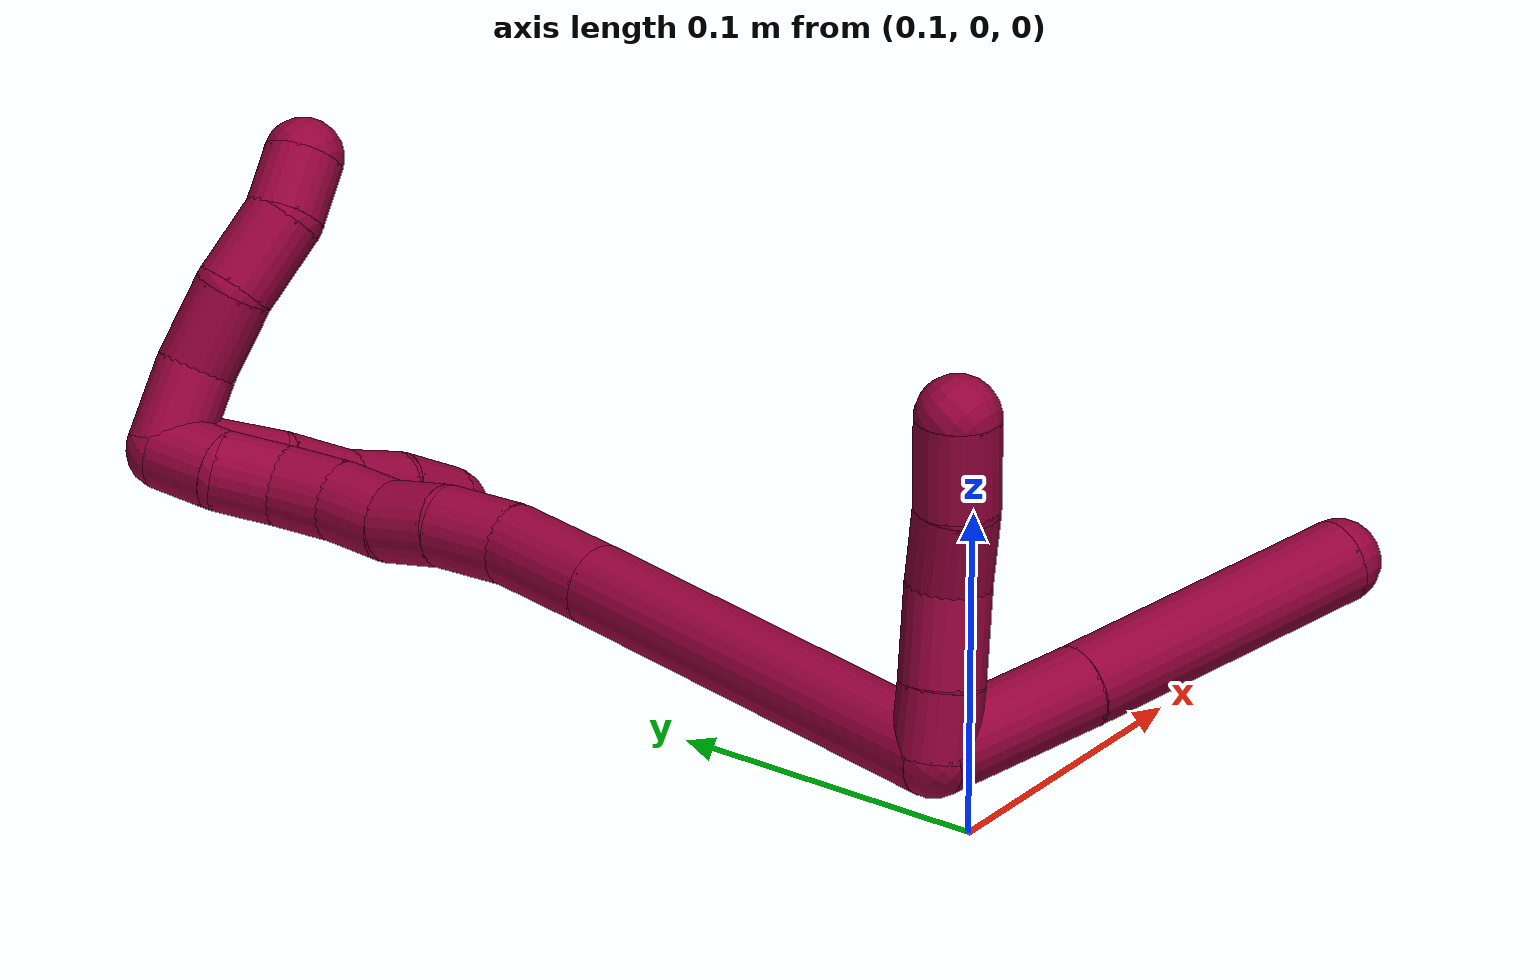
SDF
<sdf version="1.7">
 <world name="default">
  <model name="8">
   <static>0</static>
   <link name="8">
    <collision name="collision-cylinder-e_1_2_8">
     <pose>0.025119 -0.005033 -0.004466 2.29651 1.30906 2.08158</pose>
     <geometry><cylinder><radius>0.0125</radius><length>0.052009</length></cylinder></geometry>
     <surface>
      <friction><ode><mu>1.16</mu><mu2>1.16</mu2><slip1>0</slip1><slip2>0</slip2></ode></friction>
      <contact><ode><kp>1e+06</kp><kd>1</kd><max_vel>0</max_vel><min_depth>0.001</min_depth></ode></contact>
     </surface>
    </collision>
    <visual name="visual-cylinder-e_1_2_8">
     <pose>0.025119 -0.005033 -0.004466 2.29651 1.30906 2.08158</pose>
     <geometry><cylinder><radius>0.0125</radius><length>0.052009</length></cylinder></geometry>
     <material><ambient>0.584314 0 0.227451 1</ambient></material>
    </visual>
    <collision name="collision-cylinder-e_2_8_6">
     <pose>0.097904 -0.018856 -0.01609 2.25432 1.33732 2.05855</pose>
     <geometry><cylinder><radius>0.0125</radius><length>0.097991</length></cylinder></geometry>
     <surface>
      <friction><ode><mu>1.16</mu><mu2>1.16</mu2><slip1>0</slip1><slip2>0</slip2></ode></friction>
      <contact><ode><kp>1e+06</kp><kd>1</kd><max_vel>0</max_vel><min_depth>0.001</min_depth></ode></contact>
     </surface>
    </collision>
    <visual name="visual-cylinder-e_2_8_6">
     <pose>0.097904 -0.018856 -0.01609 2.25432 1.33732 2.05855</pose>
     <geometry><cylinder><radius>0.0125</radius><length>0.097991</length></cylinder></geometry>
     <material><ambient>0.584314 0 0.227451 1</ambient></material>
    </visual>
    <collision name="collision-cylinder-e_1_2_9">
     <pose>0.002736 -0.008006 0.005779 0.945524 0.270308 0.138872</pose>
     <geometry><cylinder><radius>0.0125</radius><length>0.020492</length></cylinder></geometry>
     <surface>
      <friction><ode><mu>1.16</mu><mu2>1.16</mu2><slip1>0</slip1><slip2>0</slip2></ode></friction>
      <contact><ode><kp>1e+06</kp><kd>1</kd><max_vel>0</max_vel><min_depth>0.001</min_depth></ode></contact>
     </surface>
    </collision>
    <visual name="visual-cylinder-e_1_2_9">
     <pose>0.002736 -0.008006 0.005779 0.945524 0.270308 0.138872</pose>
     <geometry><cylinder><radius>0.0125</radius><length>0.020492</length></cylinder></geometry>
     <material><ambient>0.584314 0 0.227451 1</ambient></material>
    </visual>
    <collision name="collision-cylinder-e_2_9_10">
     <pose>0.009462 -0.026467 0.020183 0.88112 0.286312 0.135707</pose>
     <geometry><cylinder><radius>0.0125</radius><length>0.028256</length></cylinder></geometry>
     <surface>
      <friction><ode><mu>1.16</mu><mu2>1.16</mu2><slip1>0</slip1><slip2>0</slip2></ode></friction>
      <contact><ode><kp>1e+06</kp><kd>1</kd><max_vel>0</max_vel><min_depth>0.001</min_depth></ode></contact>
     </surface>
    </collision>
    <visual name="visual-cylinder-e_2_9_10">
     <pose>0.009462 -0.026467 0.020183 0.88112 0.286312 0.135707</pose>
     <geometry><cylinder><radius>0.0125</radius><length>0.028256</length></cylinder></geometry>
     <material><ambient>0.584314 0 0.227451 1</ambient></material>
    </visual>
    <collision name="collision-cylinder-e_3_10_11">
     <pose>0.01389 -0.047766 0.034061 1.1195 0.036336 0.02277</pose>
     <geometry><cylinder><radius>0.0125</radius><length>0.024115</length></cylinder></geometry>
     <surface>
      <friction><ode><mu>1.16</mu><mu2>1.16</mu2><slip1>0</slip1><slip2>0</slip2></ode></friction>
      <contact><ode><kp>1e+06</kp><kd>1</kd><max_vel>0</max_vel><min_depth>0.001</min_depth></ode></contact>
     </surface>
    </collision>
    <visual name="visual-cylinder-e_3_10_11">
     <pose>0.01389 -0.047766 0.034061 1.1195 0.036336 0.02277</pose>
     <geometry><cylinder><radius>0.0125</radius><length>0.024115</length></cylinder></geometry>
     <material><ambient>0.584314 0 0.227451 1</ambient></material>
    </visual>
    <collision name="collision-cylinder-e_4_11_5">
     <pose>0.015093 -0.069957 0.046715 0.993023 0.056377 0.03055</pose>
     <geometry><cylinder><radius>0.0125</radius><length>0.027137</length></cylinder></geometry>
     <surface>
      <friction><ode><mu>1.16</mu><mu2>1.16</mu2><slip1>0</slip1><slip2>0</slip2></ode></friction>
      <contact><ode><kp>1e+06</kp><kd>1</kd><max_vel>0</max_vel><min_depth>0.001</min_depth></ode></contact>
     </surface>
    </collision>
    <visual name="visual-cylinder-e_4_11_5">
     <pose>0.015093 -0.069957 0.046715 0.993023 0.056377 0.03055</pose>
     <geometry><cylinder><radius>0.0125</radius><length>0.027137</length></cylinder></geometry>
     <material><ambient>0.584314 0 0.227451 1</ambient></material>
    </visual>
    <collision name="collision-cylinder-e_1_2_12">
     <pose>0.007665 0.034827 0.058849 -0.534374 0.111625 -0.030585</pose>
     <geometry><cylinder><radius>0.0125</radius><length>0.137621</length></cylinder></geometry>
     <surface>
      <friction><ode><mu>1.16</mu><mu2>1.16</mu2><slip1>0</slip1><slip2>0</slip2></ode></friction>
      <contact><ode><kp>1e+06</kp><kd>1</kd><max_vel>0</max_vel><min_depth>0.001</min_depth></ode></contact>
     </surface>
    </collision>
    <visual name="visual-cylinder-e_1_2_12">
     <pose>0.007665 0.034827 0.058849 -0.534374 0.111625 -0.030585</pose>
     <geometry><cylinder><radius>0.0125</radius><length>0.137621</length></cylinder></geometry>
     <material><ambient>0.584314 0 0.227451 1</ambient></material>
    </visual>
    <collision name="collision-cylinder-e_2_12_13">
     <pose>0.017184 0.078985 0.133203 -0.541718 0.102114 -0.028378</pose>
     <geometry><cylinder><radius>0.0125</radius><length>0.036382</length></cylinder></geometry>
     <surface>
      <friction><ode><mu>1.16</mu><mu2>1.16</mu2><slip1>0</slip1><slip2>0</slip2></ode></friction>
      <contact><ode><kp>1e+06</kp><kd>1</kd><max_vel>0</max_vel><min_depth>0.001</min_depth></ode></contact>
     </surface>
    </collision>
    <visual name="visual-cylinder-e_2_12_13">
     <pose>0.017184 0.078985 0.133203 -0.541718 0.102114 -0.028378</pose>
     <geometry><cylinder><radius>0.0125</radius><length>0.036382</length></cylinder></geometry>
     <material><ambient>0.584314 0 0.227451 1</ambient></material>
    </visual>
    <collision name="collision-cylinder-e_3_13_14">
     <pose>0.017764 0.095028 0.158998 -0.578035 -0.103377 0.030763</pose>
     <geometry><cylinder><radius>0.0125</radius><length>0.024702</length></cylinder></geometry>
     <surface>
      <friction><ode><mu>1.16</mu><mu2>1.16</mu2><slip1>0</slip1><slip2>0</slip2></ode></friction>
      <contact><ode><kp>1e+06</kp><kd>1</kd><max_vel>0</max_vel><min_depth>0.001</min_depth></ode></contact>
     </surface>
    </collision>
    <visual name="visual-cylinder-e_3_13_14">
     <pose>0.017764 0.095028 0.158998 -0.578035 -0.103377 0.030763</pose>
     <geometry><cylinder><radius>0.0125</radius><length>0.024702</length></cylinder></geometry>
     <material><ambient>0.584314 0 0.227451 1</ambient></material>
    </visual>
    <collision name="collision-cylinder-e_4_14_15">
     <pose>0.015692 0.108844 0.176837 -0.754939 -0.076763 0.030448</pose>
     <geometry><cylinder><radius>0.0125</radius><length>0.020792</length></cylinder></geometry>
     <surface>
      <friction><ode><mu>1.16</mu><mu2>1.16</mu2><slip1>0</slip1><slip2>0</slip2></ode></friction>
      <contact><ode><kp>1e+06</kp><kd>1</kd><max_vel>0</max_vel><min_depth>0.001</min_depth></ode></contact>
     </surface>
    </collision>
    <visual name="visual-cylinder-e_4_14_15">
     <pose>0.015692 0.108844 0.176837 -0.754939 -0.076763 0.030448</pose>
     <geometry><cylinder><radius>0.0125</radius><length>0.020792</length></cylinder></geometry>
     <material><ambient>0.584314 0 0.227451 1</ambient></material>
    </visual>
    <collision name="collision-cylinder-e_5_15_16">
     <pose>0.014781 0.121075 0.193074 -0.533296 -0.011328 0.003094</pose>
     <geometry><cylinder><radius>0.0125</radius><length>0.020179</length></cylinder></geometry>
     <surface>
      <friction><ode><mu>1.16</mu><mu2>1.16</mu2><slip1>0</slip1><slip2>0</slip2></ode></friction>
      <contact><ode><kp>1e+06</kp><kd>1</kd><max_vel>0</max_vel><min_depth>0.001</min_depth></ode></contact>
     </surface>
    </collision>
    <visual name="visual-cylinder-e_5_15_16">
     <pose>0.014781 0.121075 0.193074 -0.533296 -0.011328 0.003094</pose>
     <geometry><cylinder><radius>0.0125</radius><length>0.020179</length></cylinder></geometry>
     <material><ambient>0.584314 0 0.227451 1</ambient></material>
    </visual>
    <collision name="collision-cylinder-e_6_16_17">
     <pose>0.012951 0.131254 0.210267 -0.53582 -0.171692 0.047238</pose>
     <geometry><cylinder><radius>0.0125</radius><length>0.020078</length></cylinder></geometry>
     <surface>
      <friction><ode><mu>1.16</mu><mu2>1.16</mu2><slip1>0</slip1><slip2>0</slip2></ode></friction>
      <contact><ode><kp>1e+06</kp><kd>1</kd><max_vel>0</max_vel><min_depth>0.001</min_depth></ode></contact>
     </surface>
    </collision>
    <visual name="visual-cylinder-e_6_16_17">
     <pose>0.012951 0.131254 0.210267 -0.53582 -0.171692 0.047238</pose>
     <geometry><cylinder><radius>0.0125</radius><length>0.020078</length></cylinder></geometry>
     <material><ambient>0.584314 0 0.227451 1</ambient></material>
    </visual>
    <collision name="collision-cylinder-e_7_17_18">
     <pose>0.007061 0.139732 0.227193 -0.386523 -0.430518 0.085528</pose>
     <geometry><cylinder><radius>0.0125</radius><length>0.02001</length></cylinder></geometry>
     <surface>
      <friction><ode><mu>1.16</mu><mu2>1.16</mu2><slip1>0</slip1><slip2>0</slip2></ode></friction>
      <contact><ode><kp>1e+06</kp><kd>1</kd><max_vel>0</max_vel><min_depth>0.001</min_depth></ode></contact>
     </surface>
    </collision>
    <visual name="visual-cylinder-e_7_17_18">
     <pose>0.007061 0.139732 0.227193 -0.386523 -0.430518 0.085528</pose>
     <geometry><cylinder><radius>0.0125</radius><length>0.02001</length></cylinder></geometry>
     <material><ambient>0.584314 0 0.227451 1</ambient></material>
    </visual>
    <collision name="collision-cylinder-e_8_18_1">
     <pose>0.001671 0.147628 0.24461 -0.461053 -0.120338 0.028275</pose>
     <geometry><cylinder><radius>0.0125</radius><length>0.020235</length></cylinder></geometry>
     <surface>
      <friction><ode><mu>1.16</mu><mu2>1.16</mu2><slip1>0</slip1><slip2>0</slip2></ode></friction>
      <contact><ode><kp>1e+06</kp><kd>1</kd><max_vel>0</max_vel><min_depth>0.001</min_depth></ode></contact>
     </surface>
    </collision>
    <visual name="visual-cylinder-e_8_18_1">
     <pose>0.001671 0.147628 0.24461 -0.461053 -0.120338 0.028275</pose>
     <geometry><cylinder><radius>0.0125</radius><length>0.020235</length></cylinder></geometry>
     <material><ambient>0.584314 0 0.227451 1</ambient></material>
    </visual>
    <collision name="collision-cylinder-e_1_1_19">
     <pose>0.008909 0.144057 0.259913 0.905574 0.691097 0.346754</pose>
     <geometry><cylinder><radius>0.0125</radius><length>0.026523</length></cylinder></geometry>
     <surface>
      <friction><ode><mu>1.16</mu><mu2>1.16</mu2><slip1>0</slip1><slip2>0</slip2></ode></friction>
      <contact><ode><kp>1e+06</kp><kd>1</kd><max_vel>0</max_vel><min_depth>0.001</min_depth></ode></contact>
     </surface>
    </collision>
    <visual name="visual-cylinder-e_1_1_19">
     <pose>0.008909 0.144057 0.259913 0.905574 0.691097 0.346754</pose>
     <geometry><cylinder><radius>0.0125</radius><length>0.026523</length></cylinder></geometry>
     <material><ambient>0.584314 0 0.227451 1</ambient></material>
    </visual>
    <collision name="collision-cylinder-e_2_19_20">
     <pose>0.023673 0.124961 0.269896 1.24983 0.496452 0.361665</pose>
     <geometry><cylinder><radius>0.0125</radius><length>0.026502</length></cylinder></geometry>
     <surface>
      <friction><ode><mu>1.16</mu><mu2>1.16</mu2><slip1>0</slip1><slip2>0</slip2></ode></friction>
      <contact><ode><kp>1e+06</kp><kd>1</kd><max_vel>0</max_vel><min_depth>0.001</min_depth></ode></contact>
     </surface>
    </collision>
    <visual name="visual-cylinder-e_2_19_20">
     <pose>0.023673 0.124961 0.269896 1.24983 0.496452 0.361665</pose>
     <geometry><cylinder><radius>0.0125</radius><length>0.026502</length></cylinder></geometry>
     <material><ambient>0.584314 0 0.227451 1</ambient></material>
    </visual>
    <collision name="collision-cylinder-e_3_20_21">
     <pose>0.039877 0.105417 0.276919 1.19513 0.8258 0.579511</pose>
     <geometry><cylinder><radius>0.0125</radius><length>0.026916</length></cylinder></geometry>
     <surface>
      <friction><ode><mu>1.16</mu><mu2>1.16</mu2><slip1>0</slip1><slip2>0</slip2></ode></friction>
      <contact><ode><kp>1e+06</kp><kd>1</kd><max_vel>0</max_vel><min_depth>0.001</min_depth></ode></contact>
     </surface>
    </collision>
    <visual name="visual-cylinder-e_3_20_21">
     <pose>0.039877 0.105417 0.276919 1.19513 0.8258 0.579511</pose>
     <geometry><cylinder><radius>0.0125</radius><length>0.026916</length></cylinder></geometry>
     <material><ambient>0.584314 0 0.227451 1</ambient></material>
    </visual>
    <collision name="collision-cylinder-e_4_21_4">
     <pose>0.056856 0.092196 0.285557 0.729862 0.784544 0.313519</pose>
     <geometry><cylinder><radius>0.0125</radius><length>0.02006</length></cylinder></geometry>
     <surface>
      <friction><ode><mu>1.16</mu><mu2>1.16</mu2><slip1>0</slip1><slip2>0</slip2></ode></friction>
      <contact><ode><kp>1e+06</kp><kd>1</kd><max_vel>0</max_vel><min_depth>0.001</min_depth></ode></contact>
     </surface>
    </collision>
    <visual name="visual-cylinder-e_4_21_4">
     <pose>0.056856 0.092196 0.285557 0.729862 0.784544 0.313519</pose>
     <geometry><cylinder><radius>0.0125</radius><length>0.02006</length></cylinder></geometry>
     <material><ambient>0.584314 0 0.227451 1</ambient></material>
    </visual>
    <collision name="collision-cylinder-e_1_1_22">
     <pose>0.01311 0.151005 0.241613 3.05087 0.810124 2.93065</pose>
     <geometry><cylinder><radius>0.0125</radius><length>0.034936</length></cylinder></geometry>
     <surface>
      <friction><ode><mu>1.16</mu><mu2>1.16</mu2><slip1>0</slip1><slip2>0</slip2></ode></friction>
      <contact><ode><kp>1e+06</kp><kd>1</kd><max_vel>0</max_vel><min_depth>0.001</min_depth></ode></contact>
     </surface>
    </collision>
    <visual name="visual-cylinder-e_1_1_22">
     <pose>0.01311 0.151005 0.241613 3.05087 0.810124 2.93065</pose>
     <geometry><cylinder><radius>0.0125</radius><length>0.034936</length></cylinder></geometry>
     <material><ambient>0.584314 0 0.227451 1</ambient></material>
    </visual>
    <collision name="collision-cylinder-e_2_22_23">
     <pose>0.034834 0.151829 0.222561 -2.87672 0.892263 -2.59831</pose>
     <geometry><cylinder><radius>0.0125</radius><length>0.023304</length></cylinder></geometry>
     <surface>
      <friction><ode><mu>1.16</mu><mu2>1.16</mu2><slip1>0</slip1><slip2>0</slip2></ode></friction>
      <contact><ode><kp>1e+06</kp><kd>1</kd><max_vel>0</max_vel><min_depth>0.001</min_depth></ode></contact>
     </surface>
    </collision>
    <visual name="visual-cylinder-e_2_22_23">
     <pose>0.034834 0.151829 0.222561 -2.87672 0.892263 -2.59831</pose>
     <geometry><cylinder><radius>0.0125</radius><length>0.023304</length></cylinder></geometry>
     <material><ambient>0.584314 0 0.227451 1</ambient></material>
    </visual>
    <collision name="collision-cylinder-e_3_23_24">
     <pose>0.053202 0.155558 0.211925 -2.6722 1.1634 -2.44412</pose>
     <geometry><cylinder><radius>0.0125</radius><length>0.020252</length></cylinder></geometry>
     <surface>
      <friction><ode><mu>1.16</mu><mu2>1.16</mu2><slip1>0</slip1><slip2>0</slip2></ode></friction>
      <contact><ode><kp>1e+06</kp><kd>1</kd><max_vel>0</max_vel><min_depth>0.001</min_depth></ode></contact>
     </surface>
    </collision>
    <visual name="visual-cylinder-e_3_23_24">
     <pose>0.053202 0.155558 0.211925 -2.6722 1.1634 -2.44412</pose>
     <geometry><cylinder><radius>0.0125</radius><length>0.020252</length></cylinder></geometry>
     <material><ambient>0.584314 0 0.227451 1</ambient></material>
    </visual>
    <collision name="collision-cylinder-e_4_24_3">
     <pose>0.071464 0.160761 0.203467 -2.53468 0.985597 -2.08577</pose>
     <geometry><cylinder><radius>0.0125</radius><length>0.021508</length></cylinder></geometry>
     <surface>
      <friction><ode><mu>1.16</mu><mu2>1.16</mu2><slip1>0</slip1><slip2>0</slip2></ode></friction>
      <contact><ode><kp>1e+06</kp><kd>1</kd><max_vel>0</max_vel><min_depth>0.001</min_depth></ode></contact>
     </surface>
    </collision>
    <visual name="visual-cylinder-e_4_24_3">
     <pose>0.071464 0.160761 0.203467 -2.53468 0.985597 -2.08577</pose>
     <geometry><cylinder><radius>0.0125</radius><length>0.021508</length></cylinder></geometry>
     <material><ambient>0.584314 0 0.227451 1</ambient></material>
    </visual>
    <collision name="collision-sphere-3">
     <pose>0.080428 0.164149 0.198588 0 -0 0</pose>
     <geometry><sphere><radius>0.0125</radius></sphere></geometry>
     <surface>
      <friction><ode><mu>1.16</mu><mu2>1.16</mu2><slip1>0</slip1><slip2>0</slip2></ode></friction>
      <contact><ode><kp>1e+06</kp><kd>1</kd><max_vel>0</max_vel><min_depth>0.001</min_depth></ode></contact>
     </surface>
    </collision>
    <visual name="visual-sphere-3">
     <pose>0.080428 0.164149 0.198588 0 -0 0</pose>
     <geometry><sphere><radius>0.0125</radius></sphere></geometry>
     <material><ambient>0.584314 0 0.227451 1</ambient></material>
    </visual>
    <collision name="collision-sphere-24">
     <pose>0.062499 0.157373 0.208347 0 -0 0</pose>
     <geometry><sphere><radius>0.0125</radius></sphere></geometry>
     <surface>
      <friction><ode><mu>1.16</mu><mu2>1.16</mu2><slip1>0</slip1><slip2>0</slip2></ode></friction>
      <contact><ode><kp>1e+06</kp><kd>1</kd><max_vel>0</max_vel><min_depth>0.001</min_depth></ode></contact>
     </surface>
    </collision>
    <visual name="visual-sphere-24">
     <pose>0.062499 0.157373 0.208347 0 -0 0</pose>
     <geometry><sphere><radius>0.0125</radius></sphere></geometry>
     <material><ambient>0.584314 0 0.227451 1</ambient></material>
    </visual>
    <collision name="collision-sphere-23">
     <pose>0.043905 0.153744 0.215503 0 -0 0</pose>
     <geometry><sphere><radius>0.0125</radius></sphere></geometry>
     <surface>
      <friction><ode><mu>1.16</mu><mu2>1.16</mu2><slip1>0</slip1><slip2>0</slip2></ode></friction>
      <contact><ode><kp>1e+06</kp><kd>1</kd><max_vel>0</max_vel><min_depth>0.001</min_depth></ode></contact>
     </surface>
    </collision>
    <visual name="visual-sphere-23">
     <pose>0.043905 0.153744 0.215503 0 -0 0</pose>
     <geometry><sphere><radius>0.0125</radius></sphere></geometry>
     <material><ambient>0.584314 0 0.227451 1</ambient></material>
    </visual>
    <collision name="collision-sphere-22">
     <pose>0.025763 0.149914 0.22962 0 -0 0</pose>
     <geometry><sphere><radius>0.0125</radius></sphere></geometry>
     <surface>
      <friction><ode><mu>1.16</mu><mu2>1.16</mu2><slip1>0</slip1><slip2>0</slip2></ode></friction>
      <contact><ode><kp>1e+06</kp><kd>1</kd><max_vel>0</max_vel><min_depth>0.001</min_depth></ode></contact>
     </surface>
    </collision>
    <visual name="visual-sphere-22">
     <pose>0.025763 0.149914 0.22962 0 -0 0</pose>
     <geometry><sphere><radius>0.0125</radius></sphere></geometry>
     <material><ambient>0.584314 0 0.227451 1</ambient></material>
    </visual>
    <collision name="collision-sphere-4">
     <pose>0.063942 0.087463 0.290847 0 -0 0</pose>
     <geometry><sphere><radius>0.0125</radius></sphere></geometry>
     <surface>
      <friction><ode><mu>1.16</mu><mu2>1.16</mu2><slip1>0</slip1><slip2>0</slip2></ode></friction>
      <contact><ode><kp>1e+06</kp><kd>1</kd><max_vel>0</max_vel><min_depth>0.001</min_depth></ode></contact>
     </surface>
    </collision>
    <visual name="visual-sphere-4">
     <pose>0.063942 0.087463 0.290847 0 -0 0</pose>
     <geometry><sphere><radius>0.0125</radius></sphere></geometry>
     <material><ambient>0.584314 0 0.227451 1</ambient></material>
    </visual>
    <collision name="collision-sphere-21">
     <pose>0.04977 0.096929 0.280267 0 -0 0</pose>
     <geometry><sphere><radius>0.0125</radius></sphere></geometry>
     <surface>
      <friction><ode><mu>1.16</mu><mu2>1.16</mu2><slip1>0</slip1><slip2>0</slip2></ode></friction>
      <contact><ode><kp>1e+06</kp><kd>1</kd><max_vel>0</max_vel><min_depth>0.001</min_depth></ode></contact>
     </surface>
    </collision>
    <visual name="visual-sphere-21">
     <pose>0.04977 0.096929 0.280267 0 -0 0</pose>
     <geometry><sphere><radius>0.0125</radius></sphere></geometry>
     <material><ambient>0.584314 0 0.227451 1</ambient></material>
    </visual>
    <collision name="collision-sphere-20">
     <pose>0.029984 0.113905 0.273572 0 -0 0</pose>
     <geometry><sphere><radius>0.0125</radius></sphere></geometry>
     <surface>
      <friction><ode><mu>1.16</mu><mu2>1.16</mu2><slip1>0</slip1><slip2>0</slip2></ode></friction>
      <contact><ode><kp>1e+06</kp><kd>1</kd><max_vel>0</max_vel><min_depth>0.001</min_depth></ode></contact>
     </surface>
    </collision>
    <visual name="visual-sphere-20">
     <pose>0.029984 0.113905 0.273572 0 -0 0</pose>
     <geometry><sphere><radius>0.0125</radius></sphere></geometry>
     <material><ambient>0.584314 0 0.227451 1</ambient></material>
    </visual>
    <collision name="collision-sphere-11">
     <pose>0.014328 -0.058609 0.039316 0 -0 0</pose>
     <geometry><sphere><radius>0.0125</radius></sphere></geometry>
     <surface>
      <friction><ode><mu>1.16</mu><mu2>1.16</mu2><slip1>0</slip1><slip2>0</slip2></ode></friction>
      <contact><ode><kp>1e+06</kp><kd>1</kd><max_vel>0</max_vel><min_depth>0.001</min_depth></ode></contact>
     </surface>
    </collision>
    <visual name="visual-sphere-11">
     <pose>0.014328 -0.058609 0.039316 0 -0 0</pose>
     <geometry><sphere><radius>0.0125</radius></sphere></geometry>
     <material><ambient>0.584314 0 0.227451 1</ambient></material>
    </visual>
    <collision name="collision-sphere-10">
     <pose>0.013452 -0.036923 0.028806 0 -0 0</pose>
     <geometry><sphere><radius>0.0125</radius></sphere></geometry>
     <surface>
      <friction><ode><mu>1.16</mu><mu2>1.16</mu2><slip1>0</slip1><slip2>0</slip2></ode></friction>
      <contact><ode><kp>1e+06</kp><kd>1</kd><max_vel>0</max_vel><min_depth>0.001</min_depth></ode></contact>
     </surface>
    </collision>
    <visual name="visual-sphere-10">
     <pose>0.013452 -0.036923 0.028806 0 -0 0</pose>
     <geometry><sphere><radius>0.0125</radius></sphere></geometry>
     <material><ambient>0.584314 0 0.227451 1</ambient></material>
    </visual>
    <collision name="collision-sphere-6">
     <pose>0.14557 -0.027645 -0.023249 0 -0 0</pose>
     <geometry><sphere><radius>0.0125</radius></sphere></geometry>
     <surface>
      <friction><ode><mu>1.16</mu><mu2>1.16</mu2><slip1>0</slip1><slip2>0</slip2></ode></friction>
      <contact><ode><kp>1e+06</kp><kd>1</kd><max_vel>0</max_vel><min_depth>0.001</min_depth></ode></contact>
     </surface>
    </collision>
    <visual name="visual-sphere-6">
     <pose>0.14557 -0.027645 -0.023249 0 -0 0</pose>
     <geometry><sphere><radius>0.0125</radius></sphere></geometry>
     <material><ambient>0.584314 0 0.227451 1</ambient></material>
    </visual>
    <collision name="collision-sphere-9">
     <pose>0.005472 -0.016012 0.011559 0 -0 0</pose>
     <geometry><sphere><radius>0.0125</radius></sphere></geometry>
     <surface>
      <friction><ode><mu>1.16</mu><mu2>1.16</mu2><slip1>0</slip1><slip2>0</slip2></ode></friction>
      <contact><ode><kp>1e+06</kp><kd>1</kd><max_vel>0</max_vel><min_depth>0.001</min_depth></ode></contact>
     </surface>
    </collision>
    <visual name="visual-sphere-9">
     <pose>0.005472 -0.016012 0.011559 0 -0 0</pose>
     <geometry><sphere><radius>0.0125</radius></sphere></geometry>
     <material><ambient>0.584314 0 0.227451 1</ambient></material>
    </visual>
    <collision name="collision-sphere-2">
     <geometry><sphere><radius>0.0125</radius></sphere></geometry>
     <surface>
      <friction><ode><mu>1.16</mu><mu2>1.16</mu2><slip1>0</slip1><slip2>0</slip2></ode></friction>
      <contact><ode><kp>1e+06</kp><kd>1</kd><max_vel>0</max_vel><min_depth>0.001</min_depth></ode></contact>
     </surface>
    </collision>
    <visual name="visual-sphere-2">
     <geometry><sphere><radius>0.0125</radius></sphere></geometry>
     <material><ambient>0.584314 0 0.227451 1</ambient></material>
    </visual>
    <collision name="collision-sphere-19">
     <pose>0.017361 0.136017 0.26622 0 -0 0</pose>
     <geometry><sphere><radius>0.0125</radius></sphere></geometry>
     <surface>
      <friction><ode><mu>1.16</mu><mu2>1.16</mu2><slip1>0</slip1><slip2>0</slip2></ode></friction>
      <contact><ode><kp>1e+06</kp><kd>1</kd><max_vel>0</max_vel><min_depth>0.001</min_depth></ode></contact>
     </surface>
    </collision>
    <visual name="visual-sphere-19">
     <pose>0.017361 0.136017 0.26622 0 -0 0</pose>
     <geometry><sphere><radius>0.0125</radius></sphere></geometry>
     <material><ambient>0.584314 0 0.227451 1</ambient></material>
    </visual>
    <collision name="collision-sphere-8">
     <pose>0.050237 -0.010067 -0.008932 0 -0 0</pose>
     <geometry><sphere><radius>0.0125</radius></sphere></geometry>
     <surface>
      <friction><ode><mu>1.16</mu><mu2>1.16</mu2><slip1>0</slip1><slip2>0</slip2></ode></friction>
      <contact><ode><kp>1e+06</kp><kd>1</kd><max_vel>0</max_vel><min_depth>0.001</min_depth></ode></contact>
     </surface>
    </collision>
    <visual name="visual-sphere-8">
     <pose>0.050237 -0.010067 -0.008932 0 -0 0</pose>
     <geometry><sphere><radius>0.0125</radius></sphere></geometry>
     <material><ambient>0.584314 0 0.227451 1</ambient></material>
    </visual>
    <collision name="collision-sphere-5">
     <pose>0.015857 -0.081305 0.054114 0 -0 0</pose>
     <geometry><sphere><radius>0.0125</radius></sphere></geometry>
     <surface>
      <friction><ode><mu>1.16</mu><mu2>1.16</mu2><slip1>0</slip1><slip2>0</slip2></ode></friction>
      <contact><ode><kp>1e+06</kp><kd>1</kd><max_vel>0</max_vel><min_depth>0.001</min_depth></ode></contact>
     </surface>
    </collision>
    <visual name="visual-sphere-5">
     <pose>0.015857 -0.081305 0.054114 0 -0 0</pose>
     <geometry><sphere><radius>0.0125</radius></sphere></geometry>
     <material><ambient>0.584314 0 0.227451 1</ambient></material>
    </visual>
    <collision name="collision-sphere-12">
     <pose>0.01533 0.069655 0.117698 0 -0 0</pose>
     <geometry><sphere><radius>0.0125</radius></sphere></geometry>
     <surface>
      <friction><ode><mu>1.16</mu><mu2>1.16</mu2><slip1>0</slip1><slip2>0</slip2></ode></friction>
      <contact><ode><kp>1e+06</kp><kd>1</kd><max_vel>0</max_vel><min_depth>0.001</min_depth></ode></contact>
     </surface>
    </collision>
    <visual name="visual-sphere-12">
     <pose>0.01533 0.069655 0.117698 0 -0 0</pose>
     <geometry><sphere><radius>0.0125</radius></sphere></geometry>
     <material><ambient>0.584314 0 0.227451 1</ambient></material>
    </visual>
    <collision name="collision-sphere-13">
     <pose>0.019039 0.088316 0.148709 0 -0 0</pose>
     <geometry><sphere><radius>0.0125</radius></sphere></geometry>
     <surface>
      <friction><ode><mu>1.16</mu><mu2>1.16</mu2><slip1>0</slip1><slip2>0</slip2></ode></friction>
      <contact><ode><kp>1e+06</kp><kd>1</kd><max_vel>0</max_vel><min_depth>0.001</min_depth></ode></contact>
     </surface>
    </collision>
    <visual name="visual-sphere-13">
     <pose>0.019039 0.088316 0.148709 0 -0 0</pose>
     <geometry><sphere><radius>0.0125</radius></sphere></geometry>
     <material><ambient>0.584314 0 0.227451 1</ambient></material>
    </visual>
    <collision name="collision-sphere-14">
     <pose>0.01649 0.101741 0.169288 0 -0 0</pose>
     <geometry><sphere><radius>0.0125</radius></sphere></geometry>
     <surface>
      <friction><ode><mu>1.16</mu><mu2>1.16</mu2><slip1>0</slip1><slip2>0</slip2></ode></friction>
      <contact><ode><kp>1e+06</kp><kd>1</kd><max_vel>0</max_vel><min_depth>0.001</min_depth></ode></contact>
     </surface>
    </collision>
    <visual name="visual-sphere-14">
     <pose>0.01649 0.101741 0.169288 0 -0 0</pose>
     <geometry><sphere><radius>0.0125</radius></sphere></geometry>
     <material><ambient>0.584314 0 0.227451 1</ambient></material>
    </visual>
    <collision name="collision-sphere-15">
     <pose>0.014895 0.115947 0.184386 0 -0 0</pose>
     <geometry><sphere><radius>0.0125</radius></sphere></geometry>
     <surface>
      <friction><ode><mu>1.16</mu><mu2>1.16</mu2><slip1>0</slip1><slip2>0</slip2></ode></friction>
      <contact><ode><kp>1e+06</kp><kd>1</kd><max_vel>0</max_vel><min_depth>0.001</min_depth></ode></contact>
     </surface>
    </collision>
    <visual name="visual-sphere-15">
     <pose>0.014895 0.115947 0.184386 0 -0 0</pose>
     <geometry><sphere><radius>0.0125</radius></sphere></geometry>
     <material><ambient>0.584314 0 0.227451 1</ambient></material>
    </visual>
    <collision name="collision-sphere-16">
     <pose>0.014667 0.126204 0.201762 0 -0 0</pose>
     <geometry><sphere><radius>0.0125</radius></sphere></geometry>
     <surface>
      <friction><ode><mu>1.16</mu><mu2>1.16</mu2><slip1>0</slip1><slip2>0</slip2></ode></friction>
      <contact><ode><kp>1e+06</kp><kd>1</kd><max_vel>0</max_vel><min_depth>0.001</min_depth></ode></contact>
     </surface>
    </collision>
    <visual name="visual-sphere-16">
     <pose>0.014667 0.126204 0.201762 0 -0 0</pose>
     <geometry><sphere><radius>0.0125</radius></sphere></geometry>
     <material><ambient>0.584314 0 0.227451 1</ambient></material>
    </visual>
    <collision name="collision-sphere-17">
     <pose>0.011236 0.136304 0.218772 0 -0 0</pose>
     <geometry><sphere><radius>0.0125</radius></sphere></geometry>
     <surface>
      <friction><ode><mu>1.16</mu><mu2>1.16</mu2><slip1>0</slip1><slip2>0</slip2></ode></friction>
      <contact><ode><kp>1e+06</kp><kd>1</kd><max_vel>0</max_vel><min_depth>0.001</min_depth></ode></contact>
     </surface>
    </collision>
    <visual name="visual-sphere-17">
     <pose>0.011236 0.136304 0.218772 0 -0 0</pose>
     <geometry><sphere><radius>0.0125</radius></sphere></geometry>
     <material><ambient>0.584314 0 0.227451 1</ambient></material>
    </visual>
    <collision name="collision-sphere-18">
     <pose>0.002885 0.143159 0.235615 0 -0 0</pose>
     <geometry><sphere><radius>0.0125</radius></sphere></geometry>
     <surface>
      <friction><ode><mu>1.16</mu><mu2>1.16</mu2><slip1>0</slip1><slip2>0</slip2></ode></friction>
      <contact><ode><kp>1e+06</kp><kd>1</kd><max_vel>0</max_vel><min_depth>0.001</min_depth></ode></contact>
     </surface>
    </collision>
    <visual name="visual-sphere-18">
     <pose>0.002885 0.143159 0.235615 0 -0 0</pose>
     <geometry><sphere><radius>0.0125</radius></sphere></geometry>
     <material><ambient>0.584314 0 0.227451 1</ambient></material>
    </visual>
    <collision name="collision-sphere-1">
     <pose>0.000456 0.152096 0.253606 0 -0 0</pose>
     <geometry><sphere><radius>0.0125</radius></sphere></geometry>
     <surface>
      <friction><ode><mu>1.16</mu><mu2>1.16</mu2><slip1>0</slip1><slip2>0</slip2></ode></friction>
      <contact><ode><kp>1e+06</kp><kd>1</kd><max_vel>0</max_vel><min_depth>0.001</min_depth></ode></contact>
     </surface>
    </collision>
    <visual name="visual-sphere-1">
     <pose>0.000456 0.152096 0.253606 0 -0 0</pose>
     <geometry><sphere><radius>0.0125</radius></sphere></geometry>
     <material><ambient>0.584314 0 0.227451 1</ambient></material>
    </visual>
    <inertial>
     <pose>0.029478 0.059078 0.118208 0 -0 0</pose>
     <mass>0.75</mass>
     <inertia>
      <ixx>0.000275</ixx>
      <ixy>0</ixy>
      <ixz>0</ixz>
      <iyy>0.000333</iyy>
      <iyz>0</iyz>
      <izz>-0.000202</izz>
     </inertia>
    </inertial>
   </link>
   <pose>0.070654 -0.007717 0.03927 -1.00168 -0.047511 -0.061157</pose>
  </model>
 </world>
</sdf>
